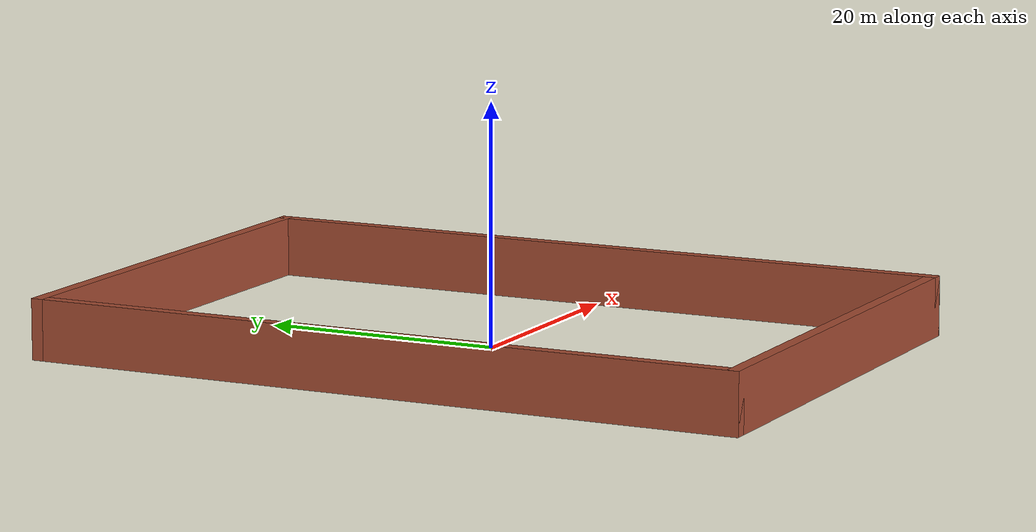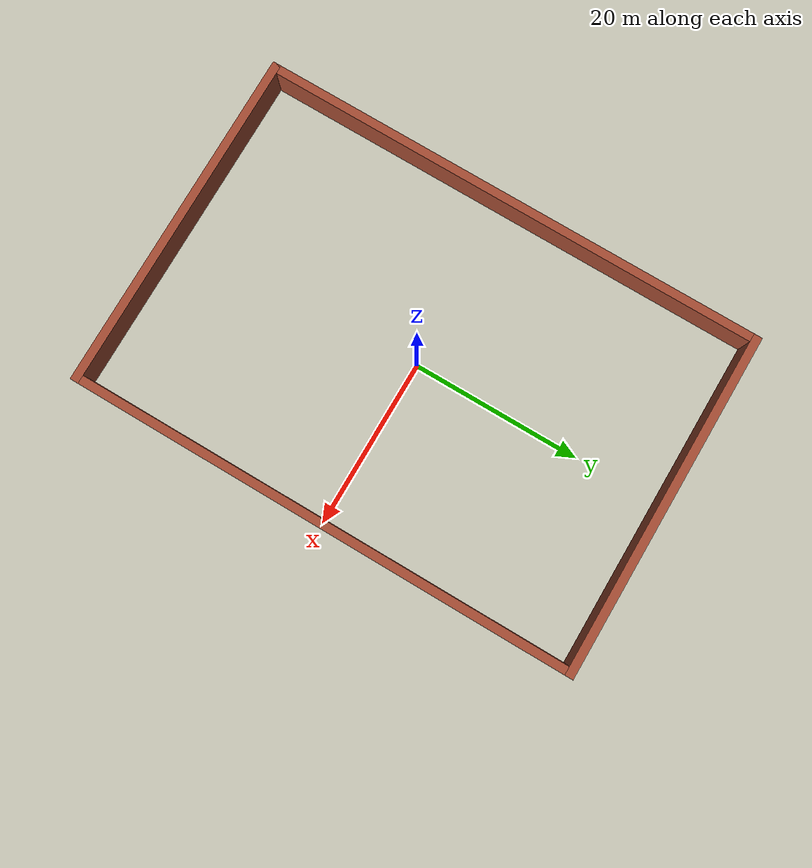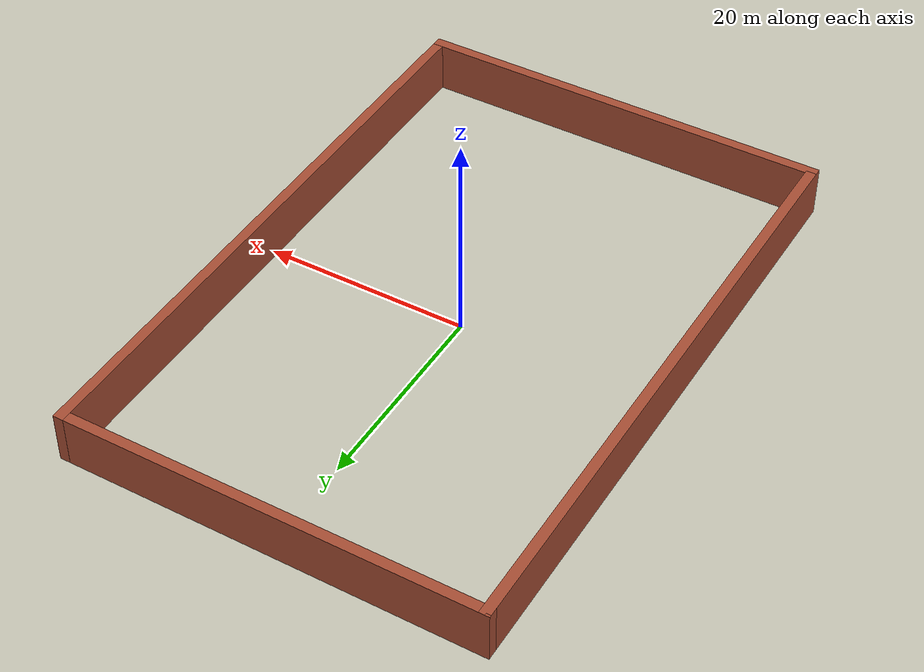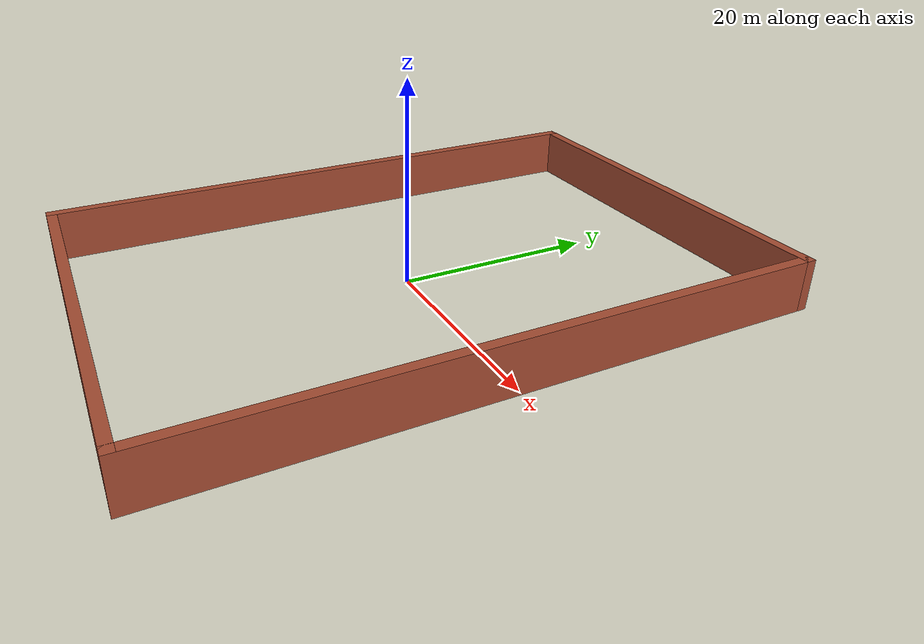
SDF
<?xml version='1.0'?>
<sdf version='1.6'>
  <model name='army_compound_2'>
    <pose frame=''>0 0 0 0 -0 0</pose>
    <link name='Wall_1'>
      <collision name='Wall_1_Collision'>
        <geometry>
          <box>
            <size>61 1 5</size>
          </box>
        </geometry>
        <pose frame=''>0 0 2.5 0 -0 0</pose>
      </collision>
      <visual name='Wall_1_Visual'>
        <pose frame=''>0 0 2.5 0 -0 0</pose>
        <geometry>
          <box>
            <size>61 1 5</size>
          </box>
        </geometry>
        <material>
          <script>
            <uri>file://media/materials/scripts/gazebo.material</uri>
            <name>Gazebo/Bricks</name>
          </script>
          <ambient>1 1 1 1</ambient>
        </material>
        <meta>
          <layer>0</layer>
        </meta>
      </visual>
      <pose frame=''>-20 0 0 0 -0 -1.5708</pose>
    </link>
    <link name='Wall_2'>
      <collision name='Wall_2_Collision'>
        <geometry>
          <box>
            <size>41 1 5</size>
          </box>
        </geometry>
        <pose frame=''>0 0 2.5 0 -0 0</pose>
      </collision>
      <visual name='Wall_2_Visual'>
        <pose frame=''>0 0 2.5 0 -0 0</pose>
        <geometry>
          <box>
            <size>41 1 5</size>
          </box>
        </geometry>
        <material>
          <script>
            <uri>file://media/materials/scripts/gazebo.material</uri>
            <name>Gazebo/Bricks</name>
          </script>
          <ambient>1 1 1 1</ambient>
        </material>
        <meta>
          <layer>0</layer>
        </meta>
      </visual>
      <pose frame=''>0 -30 0 0 -0 0</pose>
    </link>
    <link name='Wall_3'>
      <collision name='Wall_3_Collision'>
        <geometry>
          <box>
            <size>61 1 5</size>
          </box>
        </geometry>
        <pose frame=''>0 0 2.5 0 -0 0</pose>
      </collision>
      <visual name='Wall_3_Visual'>
        <pose frame=''>0 0 2.5 0 -0 0</pose>
        <geometry>
          <box>
            <size>61 1 5</size>
          </box>
        </geometry>
        <material>
          <script>
            <uri>file://media/materials/scripts/gazebo.material</uri>
            <name>Gazebo/Bricks</name>
          </script>
          <ambient>1 1 1 1</ambient>
        </material>
        <meta>
          <layer>0</layer>
        </meta>
      </visual>
      <pose frame=''>20 0 0 0 -0 1.5708</pose>
    </link>
    <link name='Wall_4'>
      <collision name='Wall_4_Collision'>
        <geometry>
          <box>
            <size>41 1 5</size>
          </box>
        </geometry>
        <pose frame=''>0 0 2.5 0 -0 0</pose>
      </collision>
      <visual name='Wall_4_Visual'>
        <pose frame=''>0 0 2.5 0 -0 0</pose>
        <geometry>
          <box>
            <size>41 1 5</size>
          </box>
        </geometry>
        <material>
          <script>
            <uri>file://media/materials/scripts/gazebo.material</uri>
            <name>Gazebo/Bricks</name>
          </script>
          <ambient>1 1 1 1</ambient>
        </material>
        <meta>
          <layer>0</layer>
        </meta>
      </visual>
      <pose frame=''>0 30 0 0 -0 3.14159</pose>
    </link>
    <static>1</static>
  </model>
</sdf>
